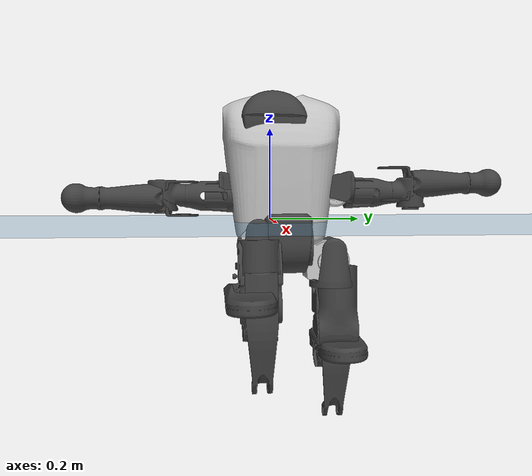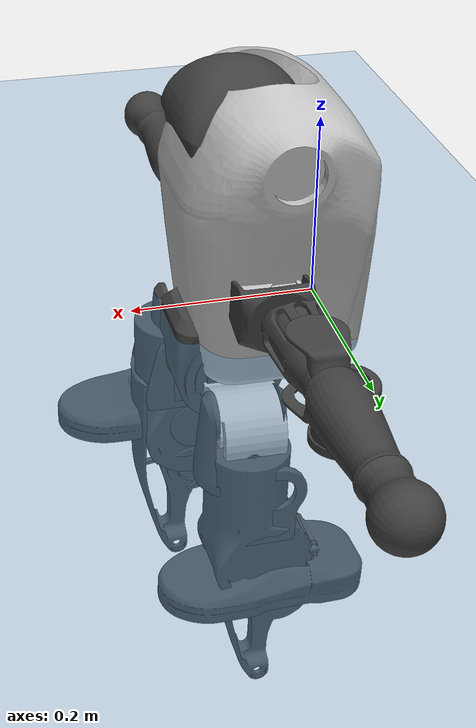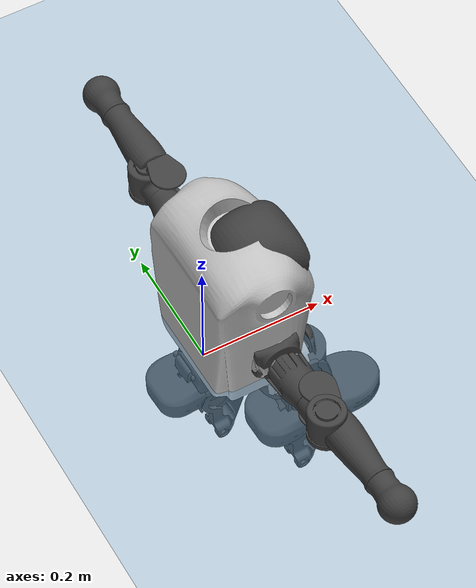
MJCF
<mujoco model="T1">
  <compiler angle="radian" assetdir="assets" balanceinertia="true" inertiafromgeom="false"/>

  <option timestep="0.005" density="1.2" viscosity="2e-05"/>

  <size nkey="1"/>

  <visual>
    <quality shadowsize="8192"/>
    <map shadowclip="0.5"/>
  </visual>

  <default>
    <default class="/">
      <joint armature="0.01" damping="0.01" frictionloss="0.1"/>
      <geom contype="0" conaffinity="0" group="1" solref="-1000 -80"/>
      <site size="0.01 0.005 0.005" group="5"/>
      <general forcelimited="true" biastype="affine" gainprm="25" biasprm="0 -25 -0.6"/>
      <default class="t1">
        <geom rgba="0.25 0.25 0.25 1"/>
        <default class="visual">
          <geom type="mesh" group="2"/>
        </default>
        <default class="collision">
          <geom group="3"/>
        </default>
        <default class="foot">
          <geom size="0.1115 0.05 0.015" type="box" condim="6" group="4" priority="1" solimp="0.015 1 0.015"/>
        </default>
        <default class="reward_collision_sphere">
          <geom group="5" rgba="1 0 0 1"/>
        </default>
      </default>
    </default>
  </default>

  <asset>
    <texture type="skybox" colorspace="auto" name="//unnamed_texture_0" builtin="gradient" rgb1="0.95 0.95 0.95" rgb2="0.95 0.95 0.95" width="100" height="600"/>
    <texture type="2d" colorspace="auto" name="texplane" builtin="checker" rgb1="0.345 0.575 0.748" rgb2="0.345 0.575 0.748" markrgb="1 1 1" width="512" height="512"/>
    <material name="MatPlane" class="/" texture="texplane" texuniform="true" texrepeat="2 2" specular="0.9"/>
    <mesh name="Trunk" class="/" file="Trunk.stl"/>
    <mesh name="H1" class="/" file="H1.stl"/>
    <mesh name="H2" class="/" file="H2.stl"/>
    <mesh name="AL1" class="/" file="AL1.stl"/>
    <mesh name="AL2" class="/" file="AL2.stl"/>
    <mesh name="AL3" class="/" file="AL3.stl"/>
    <mesh name="left_hand_link" class="/" file="left_hand_link.stl"/>
    <mesh name="AR1" class="/" file="AR1.stl"/>
    <mesh name="AR2" class="/" file="AR2.stl"/>
    <mesh name="AR3" class="/" file="AR3.stl"/>
    <mesh name="right_hand_link" class="/" file="right_hand_link.stl"/>
    <mesh name="Waist" class="/" file="Waist.stl"/>
    <mesh name="Hip_Pitch_Left" class="/" file="Hip_Pitch_Left.stl"/>
    <mesh name="Hip_Roll_Left" class="/" file="Hip_Roll_Left.stl"/>
    <mesh name="Hip_Yaw_Left" class="/" file="Hip_Yaw_Left.stl"/>
    <mesh name="Shank_Left" class="/" file="Shank_Left.stl"/>
    <mesh name="Ankle_Cross_Left" class="/" file="Ankle_Cross_Left.stl"/>
    <mesh name="left_foot_link" class="/" file="left_foot_link.stl"/>
    <mesh name="Hip_Pitch_Right" class="/" file="Hip_Pitch_Right.stl"/>
    <mesh name="Hip_Roll_Right" class="/" file="Hip_Roll_Right.stl"/>
    <mesh name="Hip_Yaw_Right" class="/" file="Hip_Yaw_Right.stl"/>
    <mesh name="Shank_Right" class="/" file="Shank_Right.stl"/>
    <mesh name="Ankle_Cross_Right" class="/" file="Ankle_Cross_Right.stl"/>
    <mesh name="right_foot_link" class="/" file="right_foot_link.stl"/>
  </asset>

  <worldbody>
    <geom name="floor" class="/" size="100 100 0.125" type="plane" group="0" material="MatPlane"/>
    <light name="toplight_shadow" class="/" pos="0 0 5" dir="0.0990148 0.0990148 -0.990148" type="directional" ambient="0.04 0.04 0.04" diffuse="0.55 0.55 0.55" specular="0.12 0.12 0.12"/>
    <light name="toplight_fill" class="/" pos="0 0 5" dir="0.0990148 0.0990148 -0.990148" type="directional" castshadow="false" ambient="0.04 0.04 0.04" diffuse="0.3 0.3 0.3" specular="0.08 0.08 0.08"/>
    <body name="trunk" childclass="t1" pos="0.00963669 0.015613 -0.0139039" quat="0.999968 -0.00348356 -0.00453669 0.00562898">
      <inertial pos="0.0709138 -0.00864638 0.0227695" quat="0.999904 0.00557216 -0.0103612 0.00728955" mass="4.58706" diaginertia="0.196998 0.00951079 9.03877e-05"/>
      <joint name="//unnamed_joint_0" type="free" armature="0" damping="0" frictionloss="0"/>
      <geom name="//unnamed_geom_1" class="visual" rgba="0.76 0.76 0.76 1" mesh="Trunk"/>
      <geom name="//unnamed_geom_2" class="collision" size="0.0559089 0.0745451 0.111818" pos="0.0755483 0 0.0366669" type="box"/>
      <geom name="//unnamed_geom_3" class="reward_collision_sphere" size="0.0857269" pos="0.0755483 0 0.0305557"/>
      <geom name="//unnamed_geom_4" class="reward_collision_sphere" size="0.0111818" pos="0.0755483 0.057091 0"/>
      <geom name="//unnamed_geom_5" class="reward_collision_sphere" size="0.0111818" pos="0.0755483 -0.057091 0"/>
      <geom name="//unnamed_geom_6" class="reward_collision_sphere" size="0.0111818" pos="0.0755483 0.0718675 0.0550003"/>
      <geom name="//unnamed_geom_7" class="reward_collision_sphere" size="0.0111818" pos="0.0755483 -0.0718675 0.0550003"/>
      <site name="imu" pos="-0.0695283 0.0402247 -0.0389836" size="0.00745451"/>
      <camera name="track" pos="0 -1.34332 0" quat="0.707107 0.707107 0 0" mode="trackcom"/>
      <camera name="ego_camera" pos="0.153615 0 0.128334" quat="-0.5 -0.5 0.5 0.5"/>
      <body name="H1" pos="0.0626387 -0.016187 0.0880046" quat="1 -1.81537e-06 -9.44466e-06 2.12615e-05">
        <inertial pos="0.0138851 -0.0109076 0.00353095" quat="0.756487 0.0289297 0.0850344 0.647812" mass="0.227281" diaginertia="0.000813942 2.92802e-05 4.51308e-07"/>
        <joint name="AAHead_yaw" pos="0 0 0" axis="-0.0217878 -0.026393 0.999414" range="-1.3674 1.86079" armature="0.0135132" damping="0.0334816" frictionloss="0.00465091"/>
        <geom name="//unnamed_geom_8" class="visual" mesh="H1"/>
        <body name="H2" pos="0.00436281 -0.00113712 0.00644045" quat="1 -0.000207399 -0.000263399 0.000866626">
          <inertial pos="0.00235702 0.00329256 0.0313011" quat="0.986674 0.0894781 -0.0592719 -0.122288" mass="0.331652" diaginertia="0.00873482 0.000275718 4.32236e-06"/>
          <joint name="Head_pitch" pos="0 0 0" axis="0.0273057 -0.999568 -0.0108959" range="-1.13481 0.255092" armature="0.0145611" damping="0.0157695" frictionloss="0.103796"/>
          <geom name="//unnamed_geom_9" class="visual" mesh="H2"/>
          <geom name="//unnamed_geom_10" class="collision" size="0.0596361" pos="0.0125914 0 0.0336113"/>
          <geom name="//unnamed_geom_11" class="reward_collision_sphere" size="0.0670906" pos="0.0251828 0 0.0305557"/>
        </body>
      </body>
      <body name="AL1" pos="0.0783498 0.065118 0.0743523" quat="0.999999 -0.000990931 0.000583341 0.000220946">
        <inertial pos="0.010536 0.0316262 -0.00746316" quat="0.565167 0.463389 -0.522012 0.439728" mass="0.247187" diaginertia="0.00434447 0.000158561 6.55575e-07"/>
        <joint name="Left_Shoulder_Pitch" pos="0 0 0" axis="-0.0251492 0.998205 -0.0543452" stiffness="0.0172349" range="-3.30737 1.0212" armature="0.00819948" damping="0" frictionloss="0.0971417"/>
        <geom name="//unnamed_geom_12" class="visual" rgba="0.76 0.76 0.76 1" mesh="AL1"/>
        <body name="AL2" pos="-0.000585794 0.0308668 0.0105866" quat="0.999999 0.000171048 0.00120184 -0.000171549">
          <inertial pos="0.00237864 0.0372317 0.00406027" quat="0.47862 0.510481 -0.496712 0.513429" mass="0.069912" diaginertia="0.00143762 4.74506e-05 5.56652e-07"/>
          <joint name="Left_Shoulder_Roll" pos="0 0 0" axis="-0.999551 -0.016954 0.0246958" stiffness="0.0278284" range="-1.36796 1.49606" armature="0.00666241" damping="0.0284531" frictionloss="0.0942137"/>
          <geom name="//unnamed_geom_13" class="visual" mesh="AL2"/>
          <body name="AL3" pos="-0.0149754 0.0427857 -0.0111106" quat="0.999975 0.00269372 -0.00344008 0.0055279">
            <inertial pos="0.0173631 0.0531042 0.00107422" quat="0.698881 0.714636 0.00217769 -0.0292705" mass="0.353987" diaginertia="0.0354466 0.00213392 1.57763e-06"/>
            <joint name="Left_Elbow_Pitch" pos="0 0 0" axis="0.0188952 -0.999748 0.0120932" stiffness="0.0270553" range="-2.22824 2.27872" armature="0.0114909" damping="0.0166097" frictionloss="0.0987573"/>
            <geom name="//unnamed_geom_14" class="visual" mesh="AL3"/>
            <geom name="//unnamed_geom_15" class="collision" size="0.0223635 0.0559089" pos="0 0.0335829 0" quat="0.707105 0.707108 0 0" type="cylinder"/>
            <geom name="//unnamed_geom_16" class="reward_collision_sphere" size="0.0268363"/>
            <body name="left_hand_link" pos="0.0113255 0.0993548 0.0185478" quat="0.999967 0.00745227 0.00169669 -0.00290178">
              <inertial pos="0.00262099 0.0865273 -0.0130005" quat="0.732403 0.679431 -0.0034465 0.0441373" mass="0.179386" diaginertia="0.0253685 0.00140905 8.28698e-07"/>
              <joint name="Left_Elbow_Yaw" pos="0 0 0" axis="0.00916172 -0.0275325 0.999579" range="-2.32248 0.188389" armature="0.0092677" damping="0" frictionloss="0.0836869"/>
              <geom name="//unnamed_geom_17" class="visual" mesh="left_hand_link"/>
              <geom name="//unnamed_geom_18" class="collision" size="0.0223635 0.065227" pos="0 0.0873156 0" quat="0.707105 0.707108 0 0" type="cylinder"/>
              <geom name="//unnamed_geom_19" class="reward_collision_sphere" size="0.0372726"/>
              <geom name="//unnamed_geom_20" class="reward_collision_sphere" size="0.0260908" pos="0 0.0738824 0"/>
              <geom name="//unnamed_geom_21" class="reward_collision_sphere" size="0.0260908" pos="0 0.144407 0"/>
            </body>
          </body>
        </body>
      </body>
      <body name="AR1" pos="0.0607182 -0.0538765 0.0779537" quat="0.999996 -1.82881e-05 -0.00177922 0.00227838">
        <inertial pos="-0.00359203 -0.0148088 -0.0172773" quat="0.528404 0.484027 -0.502599 0.483634" mass="0.251523" diaginertia="0.00486989 0.000245985 9.04153e-07"/>
        <joint name="Right_Shoulder_Pitch" pos="0 0 0" axis="0.00914436 -0.996496 0.0831364" stiffness="0.0113805" range="-1.51214 3.38995" armature="0.00405278" damping="0" frictionloss="0.0209187"/>
        <geom name="//unnamed_geom_22" class="visual" rgba="0.76 0.76 0.76 1" mesh="AR1"/>
        <body name="AR2" pos="0.000250413 -0.0200266 0.00311396" quat="0.999982 -0.000469766 0.00382699 0.00456522">
          <inertial pos="0.0167711 -0.0278915 0.0121922" quat="0.534031 0.466009 -0.541361 0.452299" mass="0.046458" diaginertia="0.000945336 3.77796e-05 4.4382e-07"/>
          <joint name="Right_Shoulder_Roll" pos="0 0 0" axis="-0.99848 0.0189482 0.0517527" stiffness="0.0421848" range="-1.78884 1.64136" armature="0.0129958" damping="0.0159356" frictionloss="0.0960405"/>
          <geom name="//unnamed_geom_23" class="visual" mesh="AR2"/>
          <body name="AR3" pos="0.00551963 -0.0250877 -0.0163892" quat="0.999972 0.000811474 -0.000798449 0.0073483">
            <inertial pos="-0.0186018 -0.0617262 -0.0158851" quat="0.711046 0.703081 -0.00821033 -0.00469373" mass="0.495426" diaginertia="0.0575677 0.00202488 2.15329e-06"/>
            <joint name="Right_Elbow_Pitch" pos="0 0 0" axis="-0.00252877 0.999997 0.000430938" stiffness="0.0541137" range="-2.13481 2.31838" armature="0.0074381" damping="0.0210774" frictionloss="0.00471927"/>
            <geom name="//unnamed_geom_24" class="visual" mesh="AR3"/>
            <geom name="//unnamed_geom_25" class="collision" size="0.0223635 0.0559089" pos="0 -0.0335829 0" quat="0.707105 0.707108 0 0" type="cylinder"/>
            <geom name="//unnamed_geom_26" class="reward_collision_sphere" size="0.0268363"/>
            <body name="right_hand_link" pos="0.0123995 -0.102528 -0.00597818" quat="0.999999 0.000193676 0.000874018 0.000747717">
              <inertial pos="0.0049686 -0.0816417 0.00728667" quat="0.699774 0.714255 -0.000158947 0.012481" mass="0.124881" diaginertia="0.0203492 0.00086801 5.04377e-07"/>
              <joint name="Right_Elbow_Yaw" pos="0 0 0" axis="0.0443702 -0.0783889 0.995935" stiffness="0.0127069" range="0.166309 2.43602" armature="0.0118471" damping="0.0186526" frictionloss="0.0309783"/>
              <geom name="//unnamed_geom_27" class="visual" mesh="right_hand_link"/>
              <geom name="//unnamed_geom_28" class="collision" size="0.0223635 0.065227" pos="0 -0.0873156 0" quat="0.707105 0.707108 0 0" type="cylinder"/>
              <geom name="//unnamed_geom_29" class="reward_collision_sphere" size="0.0372726"/>
              <geom name="//unnamed_geom_30" class="reward_collision_sphere" size="0.0260908" pos="0 -0.0738824 0"/>
              <geom name="//unnamed_geom_31" class="reward_collision_sphere" size="0.0260908" pos="0 -0.144407 0"/>
            </body>
          </body>
        </body>
      </body>
      <body name="Waist" pos="0.0974572 0.0102476 -0.0368705" quat="0.999962 0.00519724 -0.00559443 0.00415972">
        <inertial pos="0.0196279 -0.0139253 0.015822" quat="0.981421 -0.043044 -0.172228 -0.0727884" mass="1.41962" diaginertia="0.0181609 0.00088208 1.52208e-05"/>
        <joint name="Waist" pos="0 0 0" axis="0.0217745 0.058356 0.998058" range="-1.57971 1.41941" armature="0.00677779" damping="0" frictionloss="0.0664703"/>
        <geom name="//unnamed_geom_32" class="visual" mesh="Waist"/>
        <body name="Hip_Pitch_Left" pos="-0.00209487 0.085297 -0.0155274" quat="0.999993 -0.00297919 -0.00200758 0.00100245">
          <inertial pos="-0.0159491 -0.00866961 -0.00733444" quat="0.967976 0.237025 0.0387933 -0.0730466" mass="0.338566" diaginertia="0.00584791 0.000139078 3.12809e-06"/>
          <joint name="Left_Hip_Pitch" pos="0 0 0" axis="0.071586 0.997432 -0.00228316" range="-1.99668 1.70624" armature="0.00307252" damping="0.0113873" frictionloss="0.0601338"/>
          <geom name="//unnamed_geom_33" class="visual" rgba="0.76 0.76 0.76 1" mesh="Hip_Pitch_Left"/>
          <body name="Hip_Roll_Left" pos="0.00733676 0.0105662 0.00485672" quat="1 -0.000824479 4.30933e-05 -0.000306094">
            <inertial pos="0.00194029 0.0180746 -0.00639605" quat="0.706858 -0.00970185 -0.00268528 0.707284" mass="0.19079" diaginertia="0.00774698 0.000296169 1.23391e-06"/>
            <joint name="Left_Hip_Roll" pos="0 0 0" axis="-0.998604 -0.0193655 -0.0491472" range="-1.43343 -0.0236141" armature="0.00492345" damping="0.0935319" frictionloss="0.0214679"/>
            <geom name="//unnamed_geom_34" class="visual" mesh="Hip_Roll_Left"/>
            <geom name="//unnamed_geom_35" class="reward_collision_sphere" size="0.0409998"/>
            <body name="Hip_Yaw_Left" pos="-0.00610854 0.0108656 -0.034998" quat="0.999982 -0.00167059 -0.00276805 0.00507708">
              <inertial pos="-0.0157531 -0.00806817 -0.013726" quat="0.685344 0.00429038 -0.0458819 0.72676" mass="0.835377" diaginertia="0.0960192 0.0042825 8.46554e-06"/>
              <joint name="Left_Hip_Yaw" pos="0 0 0" axis="-0.00627142 -0.00109961 -0.99998" stiffness="0.0805118" range="-0.64253 1.11692" armature="0.00858594" damping="0.00176077" frictionloss="0.0673825"/>
              <geom name="//unnamed_geom_36" class="visual" mesh="Hip_Yaw_Left"/>
              <geom name="//unnamed_geom_37" class="collision" size="0.0372726 0.0596361" type="cylinder"/>
              <body name="Shank_Left" pos="-0.0221356 -0.00230208 -0.0382883" quat="1 -0.000109336 8.7463e-05 3.00972e-05">
                <inertial pos="0.00668235 0.00160221 -0.0432145" quat="0.996472 0.0261978 0.0294899 0.0740796" mass="0.676491" diaginertia="0.0838425 0.00527125 5.3403e-06"/>
                <joint name="Left_Knee_Pitch" pos="0 0 0" axis="0.016864 0.998725 0.0475881" range="0.00497304 2.59294" armature="0.00184969" damping="0.0754739" frictionloss="0.0892478"/>
                <geom name="//unnamed_geom_38" class="visual" mesh="Shank_Left"/>
                <geom name="//unnamed_geom_39" class="collision" size="0.0372726 0.0559089" pos="0 0 -0.0366669" type="cylinder"/>
                <geom name="//unnamed_geom_40" class="reward_collision_sphere" size="0.0484543"/>
                <body name="Ankle_Cross_Left" pos="-0.0144955 -0.00272209 -0.104544" quat="0.999983 0.00523507 -0.00210695 -0.00117827">
                  <inertial pos="0.0141102 -0.00636227 -0.0141302" quat="0.454758 0.552859 0.538322 0.444692" mass="0.0274304" diaginertia="0.000102673 3.42414e-06 2.58489e-08"/>
                  <joint name="Left_Ankle_Pitch" pos="0 0 0" axis="0.00609834 0.999979 -0.00238879" stiffness="0.0740948" range="-0.860784 0.350756" armature="0.000189283" damping="0" frictionloss="0.0599983"/>
                  <geom name="//unnamed_geom_41" class="visual" mesh="Ankle_Cross_Left"/>
                  <body name="left_foot_link" pos="0.00877524 0.013243 -0.0171094" quat="0.999955 0.00426401 0.00213826 0.00814622">
                    <inertial pos="0.0138904 0.0114934 0.00292279" quat="0.0341892 0.61885 0.0748924 0.781183" mass="0.211196" diaginertia="0.00754967 0.000303653 4.05199e-06"/>
                    <joint name="Left_Ankle_Roll" pos="0 0 0" axis="-0.995718 0.019532 -0.0903515" range="-0.613381 0.184908" armature="0.00725303" damping="0.0748028" frictionloss="0.101908"/>
                    <geom name="//unnamed_geom_42" class="visual" mesh="left_foot_link"/>
                    <geom name="left_foot" class="foot" size="0.0476619 0.056167 0.0118428" pos="0.0125914 0 -0.00458336"/>
                    <geom name="//unnamed_geom_44" class="reward_collision_sphere" size="0.0387635" pos="0.0125914 0 -0.00458336"/>
                    <geom name="//unnamed_geom_45" class="reward_collision_sphere" size="0.0223635" pos="0.119618 -0.0154481 -0.00458336"/>
                    <geom name="//unnamed_geom_46" class="reward_collision_sphere" size="0.0223635" pos="-0.0881397 -0.0154481 -0.00458336"/>
                    <site name="left_foot" class="foot" pos="0.0125914 0 -0.00458336" size="0.00745451"/>
                  </body>
                </body>
              </body>
            </body>
          </body>
        </body>
        <body name="Hip_Pitch_Right" pos="0.00715144 -0.0593517 0.0182731" quat="0.999997 0.00208958 0.000465516 -0.00126949">
          <inertial pos="0.0180089 0.0210754 0.00340486" quat="0.980101 -0.195671 0.0216406 -0.0254136" mass="0.412478" diaginertia="0.00474515 0.000162275 3.30109e-06"/>
          <joint name="Right_Hip_Pitch" pos="0 0 0" axis="0.0105711 -0.999293 0.0360729" stiffness="0.0460237" range="-1.4207 2.05529" armature="0.0110773" damping="0.0878456" frictionloss="0.0381483"/>
          <geom name="//unnamed_geom_47" class="visual" rgba="0.76 0.76 0.76 1" mesh="Hip_Pitch_Right"/>
          <body name="Hip_Roll_Right" pos="0.0127516 -0.00203575 0.0120764" quat="0.999982 0.00178242 -0.00568066 0.00123039">
            <inertial pos="0.0148119 -0.00909802 -0.0297732" quat="0.677501 0.00944039 -0.0712704 0.732" mass="0.149894" diaginertia="0.00463249 0.000245532 1.53652e-06"/>
            <joint name="Right_Hip_Roll" pos="0 0 0" axis="-0.999265 -0.00878973 -0.0373196" stiffness="0.0020254" range="-0.0777608 1.48506" armature="0.00953366" damping="0" frictionloss="0.0251656"/>
            <geom name="//unnamed_geom_48" class="visual" mesh="Hip_Roll_Right"/>
            <geom name="//unnamed_geom_49" class="reward_collision_sphere" size="0.0409998"/>
            <body name="Hip_Yaw_Right" pos="0.0179594 0.00114707 -0.0158732" quat="0.999999 -0.00113169 0.000154149 0.00121357">
              <inertial pos="-0.00325198 0.00748467 -0.0395797" quat="0.718516 -0.0455939 -0.0375945 0.692995" mass="1.00066" diaginertia="0.067197 0.00403068 5.64858e-06"/>
              <joint name="Right_Hip_Yaw" pos="0 0 0" axis="-0.0183518 0.0157853 -0.999707" stiffness="0.0367405" range="-0.959422 1.03073" armature="0.00515115" damping="0" frictionloss="0.107932"/>
              <geom name="//unnamed_geom_50" class="visual" mesh="Hip_Yaw_Right"/>
              <geom name="//unnamed_geom_51" class="collision" size="0.0372726 0.0596361" type="cylinder"/>
              <body name="Shank_Right" pos="-0.00207442 4.5876e-05 -0.0273932" quat="0.99999 0.00343202 0.000104027 0.00300217">
                <inertial pos="-0.0104064 0.0150469 -0.0360059" quat="0.995481 -0.037713 -0.00669153 -0.0868889" mass="0.623502" diaginertia="0.129899 0.00496377 6.57874e-06"/>
                <joint name="Right_Knee_Pitch" pos="0 0 0" axis="-0.0171022 -0.999851 0.00237899" range="-2.01075 -0.0698608" armature="0.0101839" damping="0.00909821" frictionloss="0.0959732"/>
                <geom name="//unnamed_geom_52" class="visual" mesh="Shank_Right"/>
                <geom name="//unnamed_geom_53" class="collision" size="0.0372726 0.0559089" pos="0 0 -0.0366669" type="cylinder"/>
                <geom name="//unnamed_geom_54" class="reward_collision_sphere" size="0.0484543"/>
                <body name="Ankle_Cross_Right" pos="0.00706275 -0.00724304 -0.07585" quat="1 -0.000663164 8.13811e-05 0.000255779">
                  <inertial pos="-0.00255307 -0.0112348 -0.00239776" quat="0.442771 0.550876 0.55122 0.443449" mass="0.0332983" diaginertia="6.96836e-05 3.8766e-06 2.2943e-08"/>
                  <joint name="Right_Ankle_Pitch" pos="0 0 0" axis="-0.0710982 -0.996781 0.0370456" stiffness="0.0729731" range="-0.598174 1.15155" armature="0.00725938" damping="0" frictionloss="0.0677493"/>
                  <geom name="//unnamed_geom_55" class="visual" mesh="Ankle_Cross_Right"/>
                  <body name="right_foot_link" pos="0.0018274 -0.0154141 -0.00701148" quat="0.999999 0.000648914 -0.0010762 -0.000165919">
                    <inertial pos="-0.00037487 -0.0154426 0.0154849" quat="0.0697942 0.609305 0.0312619 0.789239" mass="0.396721" diaginertia="0.00986492 0.000393976 8.7891e-06"/>
                    <joint name="Right_Ankle_Roll" pos="0 0 0" axis="-0.998955 0.0152194 -0.0430944" range="-0.144217 0.0986123" armature="0.0140416" damping="0.0984569" frictionloss="0.0241194"/>
                    <geom name="//unnamed_geom_56" class="visual" mesh="right_foot_link"/>
                    <geom name="right_foot" class="foot" size="0.0780683 0.0581726 0.00465741" pos="0.0125914 0 -0.00458336"/>
                    <geom name="//unnamed_geom_58" class="reward_collision_sphere" size="0.0298181"/>
                    <geom name="//unnamed_geom_59" class="reward_collision_sphere" size="0.0223635" pos="0.0125914 0 -0.00458336"/>
                    <geom name="//unnamed_geom_60" class="reward_collision_sphere" size="0.0223635" pos="0.119618 0.0154481 -0.00458336"/>
                    <geom name="//unnamed_geom_61" class="reward_collision_sphere" size="0.0223635" pos="-0.0881397 0.0154481 -0.00458336"/>
                    <site name="right_foot" class="foot" pos="0.0125914 0 -0.00458336" size="0.00745451"/>
                  </body>
                </body>
              </body>
            </body>
          </body>
        </body>
      </body>
    </body>
  </worldbody>

  <contact>
    <pair class="/" geom1="floor" geom2="left_foot" name="//unnamed_contact_0"/>
    <pair class="/" geom1="floor" geom2="right_foot" name="//unnamed_contact_1"/>
  </contact>

  <actuator>
    <general name="AAHead_yaw" class="/" joint="AAHead_yaw" forcerange="-5.60466 5.60466" gainprm="23.5664" biasprm="0 -23.5664 -0.318637"/>
    <general name="Head_pitch" class="/" joint="Head_pitch" forcerange="-4.58561 4.58561" gainprm="23.5664" biasprm="0 -23.5664 -0.318637"/>
    <general name="Left_Shoulder_Pitch" class="/" joint="Left_Shoulder_Pitch" forcerange="-22.818 22.818" gainprm="23.5664" biasprm="0 -23.5664 -0.318637"/>
    <general name="Left_Shoulder_Roll" class="/" joint="Left_Shoulder_Roll" forcerange="-21.4438 21.4438" gainprm="23.5664" biasprm="0 -23.5664 -0.318637"/>
    <general name="Left_Elbow_Pitch" class="/" joint="Left_Elbow_Pitch" forcerange="-6.9172 6.9172" gainprm="23.5664" biasprm="0 -23.5664 -0.318637"/>
    <general name="Left_Elbow_Yaw" class="/" joint="Left_Elbow_Yaw" forcerange="-14.7256 14.7256" gainprm="23.5664" biasprm="0 -23.5664 -0.318637"/>
    <general name="Right_Shoulder_Pitch" class="/" joint="Right_Shoulder_Pitch" forcerange="-16.8642 16.8642" gainprm="23.5664" biasprm="0 -23.5664 -0.318637"/>
    <general name="Right_Shoulder_Roll" class="/" joint="Right_Shoulder_Roll" forcerange="-6.60594 6.60594" gainprm="23.5664" biasprm="0 -23.5664 -0.318637"/>
    <general name="Right_Elbow_Pitch" class="/" joint="Right_Elbow_Pitch" forcerange="-10.1494 10.1494" gainprm="23.5664" biasprm="0 -23.5664 -0.318637"/>
    <general name="Right_Elbow_Yaw" class="/" joint="Right_Elbow_Yaw" forcerange="-17.2608 17.2608" gainprm="23.5664" biasprm="0 -23.5664 -0.318637"/>
    <general name="Waist" class="/" joint="Waist" forcerange="-34.9802 34.9802" gainprm="23.5664" biasprm="0 -23.5664 -0.318637"/>
    <general name="Left_Hip_Pitch" class="/" joint="Left_Hip_Pitch" forcerange="-26.8401 26.8401" gainprm="23.5664" biasprm="0 -23.5664 -0.318637"/>
    <general name="Left_Hip_Roll" class="/" joint="Left_Hip_Roll" forcerange="-14.445 14.445" gainprm="23.5664" biasprm="0 -23.5664 -0.318637"/>
    <general name="Left_Hip_Yaw" class="/" joint="Left_Hip_Yaw" forcerange="-32.3195 32.3195" gainprm="23.5664" biasprm="0 -23.5664 -0.318637"/>
    <general name="Left_Knee_Pitch" class="/" joint="Left_Knee_Pitch" forcerange="-48.7514 48.7514" gainprm="23.5664" biasprm="0 -23.5664 -0.318637"/>
    <general name="Left_Ankle_Pitch" class="/" joint="Left_Ankle_Pitch" forcerange="-14.9445 14.9445" gainprm="23.5664" biasprm="0 -23.5664 -0.318637"/>
    <general name="Left_Ankle_Roll" class="/" joint="Left_Ankle_Roll" forcerange="-7.51107 7.51107" gainprm="23.5664" biasprm="0 -23.5664 -0.318637"/>
    <general name="Right_Hip_Pitch" class="/" joint="Right_Hip_Pitch" forcerange="-13.3003 13.3003" gainprm="23.5664" biasprm="0 -23.5664 -0.318637"/>
    <general name="Right_Hip_Roll" class="/" joint="Right_Hip_Roll" forcerange="-7.02969 7.02969" gainprm="23.5664" biasprm="0 -23.5664 -0.318637"/>
    <general name="Right_Hip_Yaw" class="/" joint="Right_Hip_Yaw" forcerange="-24.2075 24.2075" gainprm="23.5664" biasprm="0 -23.5664 -0.318637"/>
    <general name="Right_Knee_Pitch" class="/" joint="Right_Knee_Pitch" forcerange="-25.6807 25.6807" gainprm="23.5664" biasprm="0 -23.5664 -0.318637"/>
    <general name="Right_Ankle_Pitch" class="/" joint="Right_Ankle_Pitch" forcerange="-24.9845 24.9845" gainprm="23.5664" biasprm="0 -23.5664 -0.318637"/>
    <general name="Right_Ankle_Roll" class="/" joint="Right_Ankle_Roll" forcerange="-5.01743 5.01743" gainprm="23.5664" biasprm="0 -23.5664 -0.318637"/>
  </actuator>

  <sensor>
    <gyro site="imu" name="imu_angular_velocity"/>
    <velocimeter site="imu" name="imu_linear_velocity"/>
    <framelinvel objtype="site" objname="left_foot" name="left_foot_global_linear_velocity"/>
    <framelinvel objtype="site" objname="right_foot" name="right_foot_global_linear_velocity"/>
  </sensor>

  <keyframe>
    <key name="home" qpos="0 0 0.6385 1 0 0 0 0 0 0 1.4 0 -0.4 0 -1.4 0 0.4 0 -0.4 0 0 0.8 -0.4 0 0.4 0 0 -0.8 0.4 0"/>
  </keyframe>
</mujoco>
